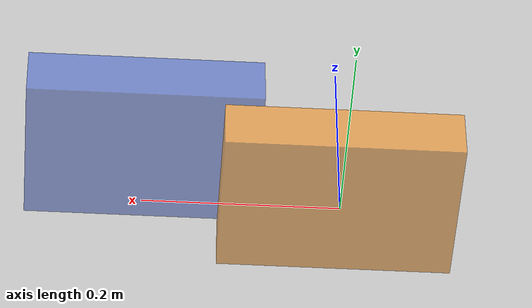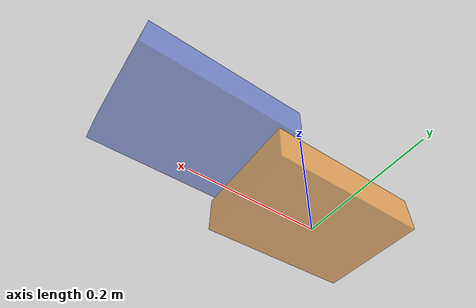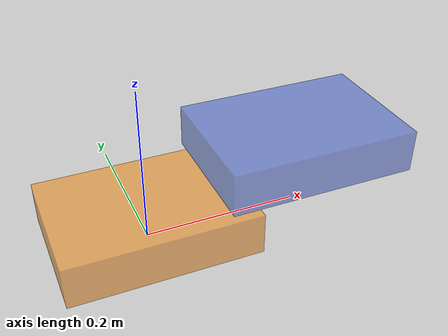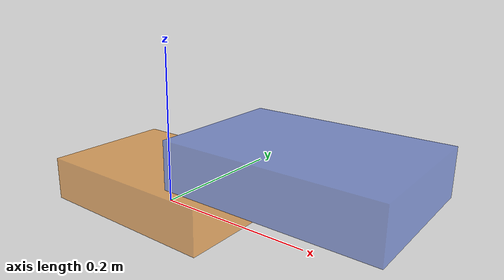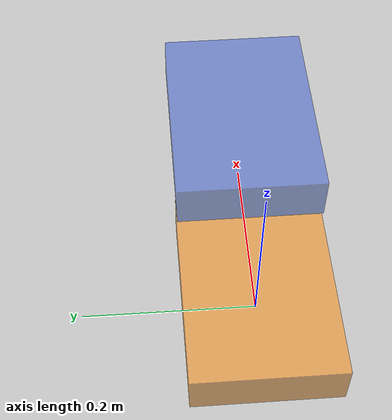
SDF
<?xml version="1.0"?>

<sdf version="1.5">
  <model name='box_alt'>
    <link name='box_alt_root_link'>
      <pose>0 0 0.0275 0 0 0</pose>
      <inertial>
	<!-- CoM -->
	<pose>0.0 0.0 0.0</pose>
        <mass>0.8</mass>
        <inertia>
          <ixx>0.002128333333333334</ixx>
          <ixy>0.0</ixy>
          <ixz>0.0</ixz>
          <iyy>0.0040416666666666665</iyy>
          <iyz>0.0</iyz>
          <izz>0.005766666666666667</izz>
        </inertia>
      </inertial>
      <collision name='box_alt_collision'>
        <geometry>
	  <box>
	    <size>0.24 0.17 0.055</size>
	  </box>
        </geometry>
      </collision>
      <visual name='box_alt_visual'>
        <geometry>
	  <box>
	    <size>0.24 0.17 0.055</size>
	  </box>
        </geometry>
        <material>
	  <script>
	    <uri>file://media/materials/scripts/gazebo.material</uri>
	    <name>Gazebo/Orange</name>
	  </script>
        </material>
	<transparency>0.4</transparency>
      </visual>
    </link>
    <link name="box_alt_estimate_link">
      <pose>0.2 0 0.0932 0 0 0</pose>
      <gravity>false</gravity>
      <kinematic>true</kinematic>
      <visual name='box_alt_estimate_visual'>
	<plugin name="viewer" filename='libgazebo_yarp_estimateViewer.so'>
	  <!-- local port is composed as /model_name/clientLocalPortSuffix -->
	  <clientLocalPortSuffix>/estimate_viewer/transformClient:i</clientLocalPortSuffix>
	  <sourceFrameName>/inertial</sourceFrameName>
	  <!-- target frame name is composed as /model_name/targetFrameNameSuffix -->
	  <targetFrameNameSuffix>estimate/frame</targetFrameNameSuffix>
	</plugin>
        <geometry>
	  <box>
	    <size>0.24 0.17 0.055</size>
	  </box>
        </geometry>
        <material>
	  <script>
	    <uri>file://media/materials/scripts/gazebo.material</uri>
	    <name>Gazebo/Blue</name>
	  </script>
        </material>
	<transparency>0.5</transparency>
      </visual>
    </link>
    <joint name="fixed_estimate" type="fixed">
      <parent>world</parent>
      <child>box_alt_estimate_link</child>
    </joint>
    <plugin name="pose_publisher" filename='libgazebo_yarp_modelposepublisher.so'>
      <period>0.01</period>
    </plugin>
    <plugin name="point_cloud" filename='libgazebo_yarp_fakePointCloud.so'>
      <period>0.5</period>
      <observerOrigin>0 0.07 0.93</observerOrigin>
      <numPoints>100</numPoints>
      <meshPath>model://box_alt/box.off</meshPath>
      <outputPortSuffix>fakepointcloud:o</outputPortSuffix>
      <enableNoise>true</enableNoise>
      <noiseMean>0.0</noiseMean>
      <noiseStd>0.0055</noiseStd>
      <showPointCloud>true</showPointCloud>
      <pointCloudColour>Gazebo/RedTransparent</pointCloudColour>
    </plugin>
  </model>
</sdf>
